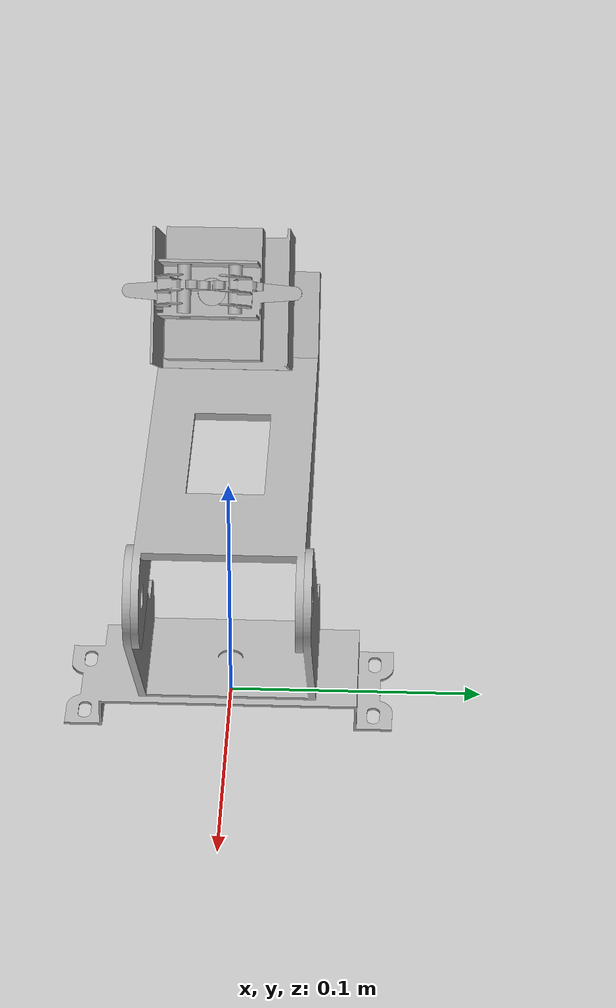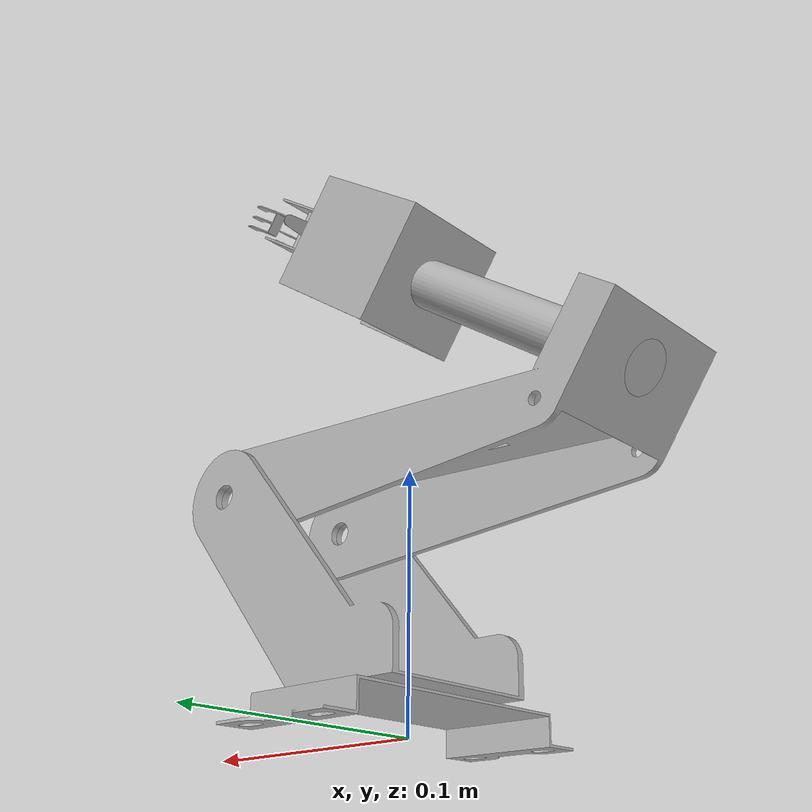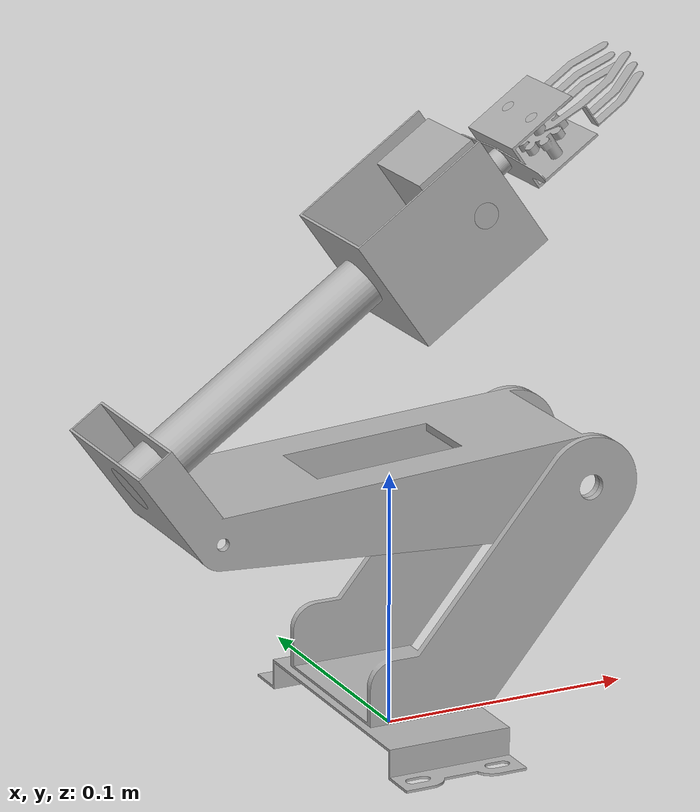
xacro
<?xml version="1.0" ?>
<robot name="7dof" xmlns:xacro="http://www.ros.org/wiki/xacro">

<xacro:include filename="$(find 7dof_description)/urdf/materials.xacro" />
<xacro:include filename="$(find 7dof_description)/urdf/7dof.trans" />
<xacro:include filename="$(find 7dof_description)/urdf/7dof.gazebo" />
<link name="base_link">
  <inertial>
    <origin xyz="-1.9615822388533525e-17 8.827120074840085e-17 0.009002899250958178" rpy="0 0 0"/>
    <mass value="0.01956038700343977"/>
    <inertia ixx="2.9e-05" iyy="4e-06" izz="3.3e-05" ixy="0.0" iyz="0.0" ixz="-0.0"/>
  </inertial>
  <visual>
    <origin xyz="0 0 0" rpy="0 0 0"/>
    <geometry>
      <mesh filename="file://$(find 7dof_description)/meshes/base_link.stl" scale="0.001 0.001 0.001"/>
    </geometry>
    <material name="silver"/>
  </visual>
  <collision>
    <origin xyz="0 0 0" rpy="0 0 0"/>
    <geometry>
      <mesh filename="file://$(find 7dof_description)/meshes/base_link.stl" scale="0.001 0.001 0.001"/>
    </geometry>
  </collision>
</link>

<link name="arm_1_1">
  <inertial>
    <origin xyz="0.02971251800470596 5.924914869048442e-17 0.0414323495110301" rpy="0 0 0"/>
    <mass value="0.09066295805207186"/>
    <inertia ixx="0.00017" iyy="0.000152" izz="0.000164" ixy="0.0" iyz="0.0" ixz="-6.4e-05"/>
  </inertial>
  <visual>
    <origin xyz="-0.0 -0.0 -0.012" rpy="0 0 0"/>
    <geometry>
      <mesh filename="file://$(find 7dof_description)/meshes/arm_1_1.stl" scale="0.001 0.001 0.001"/>
    </geometry>
    <material name="silver"/>
  </visual>
  <collision>
    <origin xyz="-0.0 -0.0 -0.012" rpy="0 0 0"/>
    <geometry>
      <mesh filename="file://$(find 7dof_description)/meshes/arm_1_1.stl" scale="0.001 0.001 0.001"/>
    </geometry>
  </collision>
</link>

<link name="arm_3_1">
  <inertial>
    <origin xyz="0.05959283088497133 4.347405463805868e-05 0.04172707292226541" rpy="0 0 0"/>
    <mass value="0.12086262440631358"/>
    <inertia ixx="9.5e-05" iyy="0.000241" izz="0.000173" ixy="-0.0" iyz="-0.0" ixz="-0.000107"/>
  </inertial>
  <visual>
    <origin xyz="0.105545 -0.000112 -0.110506" rpy="0 0 0"/>
    <geometry>
      <mesh filename="file://$(find 7dof_description)/meshes/arm_3_1.stl" scale="0.001 0.001 0.001"/>
    </geometry>
    <material name="silver"/>
  </visual>
  <collision>
    <origin xyz="0.105545 -0.000112 -0.110506" rpy="0 0 0"/>
    <geometry>
      <mesh filename="file://$(find 7dof_description)/meshes/arm_3_1.stl" scale="0.001 0.001 0.001"/>
    </geometry>
  </collision>
</link>

<link name="arm_4_1">
  <inertial>
    <origin xyz="-0.00031065124913117956 0.02232540295040704 0.0009929441828203378" rpy="0 0 0"/>
    <mass value="0.04754958307980198"/>
    <inertia ixx="1.2e-05" iyy="1.2e-05" izz="1e-05" ixy="0.0" iyz="-0.0" ixz="3e-06"/>
  </inertial>
  <visual>
    <origin xyz="-0.027218 0.024888 -0.203467" rpy="0 0 0"/>
    <geometry>
      <mesh filename="file://$(find 7dof_description)/meshes/arm_4_1.stl" scale="0.001 0.001 0.001"/>
    </geometry>
    <material name="silver"/>
  </visual>
  <collision>
    <origin xyz="-0.027218 0.024888 -0.203467" rpy="0 0 0"/>
    <geometry>
      <mesh filename="file://$(find 7dof_description)/meshes/arm_4_1.stl" scale="0.001 0.001 0.001"/>
    </geometry>
  </collision>
</link>

<link name="arm_5_1">
  <inertial>
    <origin xyz="0.00956723756236743 4.879877418544239e-07 0.006536735298877272" rpy="0 0 0"/>
    <mass value="0.007583002778034214"/>
    <inertia ixx="2e-06" iyy="1e-06" izz="2e-06" ixy="0.0" iyz="-0.0" ixz="-0.0"/>
  </inertial>
  <visual>
    <origin xyz="-0.045485 0.002388 -0.217479" rpy="0 0 0"/>
    <geometry>
      <mesh filename="file://$(find 7dof_description)/meshes/arm_5_1.stl" scale="0.001 0.001 0.001"/>
    </geometry>
    <material name="silver"/>
  </visual>
  <collision>
    <origin xyz="-0.045485 0.002388 -0.217479" rpy="0 0 0"/>
    <geometry>
      <mesh filename="file://$(find 7dof_description)/meshes/arm_5_1.stl" scale="0.001 0.001 0.001"/>
    </geometry>
  </collision>
</link>

<link name="arm_7_1">
  <inertial>
    <origin xyz="0.010202770809547769 -0.0009394516584164212 -0.004493000835550015" rpy="0 0 0"/>
    <mass value="0.003466288836036091"/>
    <inertia ixx="0.0" iyy="1e-06" izz="0.0" ixy="0.0" iyz="0.0" ixz="-0.0"/>
  </inertial>
  <visual>
    <origin xyz="-0.052446 0.011538 -0.234561" rpy="0 0 0"/>
    <geometry>
      <mesh filename="file://$(find 7dof_description)/meshes/arm_7_1.stl" scale="0.001 0.001 0.001"/>
    </geometry>
    <material name="silver"/>
  </visual>
  <collision>
    <origin xyz="-0.052446 0.011538 -0.234561" rpy="0 0 0"/>
    <geometry>
      <mesh filename="file://$(find 7dof_description)/meshes/arm_7_1.stl" scale="0.001 0.001 0.001"/>
    </geometry>
  </collision>
</link>

<link name="arm_6_1">
  <inertial>
    <origin xyz="0.010207004599050724 0.0005801178482570417 -0.00449297171362914" rpy="0 0 0"/>
    <mass value="0.00346329575383349"/>
    <inertia ixx="0.0" iyy="1e-06" izz="0.0" ixy="-0.0" iyz="-0.0" ixz="-0.0"/>
  </inertial>
  <visual>
    <origin xyz="-0.052446 -0.006762 -0.234561" rpy="0 0 0"/>
    <geometry>
      <mesh filename="file://$(find 7dof_description)/meshes/arm_6_1.stl" scale="0.001 0.001 0.001"/>
    </geometry>
    <material name="silver"/>
  </visual>
  <collision>
    <origin xyz="-0.052446 -0.006762 -0.234561" rpy="0 0 0"/>
    <geometry>
      <mesh filename="file://$(find 7dof_description)/meshes/arm_6_1.stl" scale="0.001 0.001 0.001"/>
    </geometry>
  </collision>
</link>

<link name="arm_2_1">
  <inertial>
    <origin xyz="-0.0766672536979728 -0.031996855183144685 0.006477186695577314" rpy="0 0 0"/>
    <mass value="0.1523954313332151"/>
    <inertia ixx="0.000119" iyy="0.00047" izz="0.000555" ixy="0.0" iyz="-0.0" ixz="1.5e-05"/>
  </inertial>
  <visual>
    <origin xyz="-0.067151 -0.032 -0.095527" rpy="0 0 0"/>
    <geometry>
      <mesh filename="file://$(find 7dof_description)/meshes/arm_2_1.stl" scale="0.001 0.001 0.001"/>
    </geometry>
    <material name="silver"/>
  </visual>
  <collision>
    <origin xyz="-0.067151 -0.032 -0.095527" rpy="0 0 0"/>
    <geometry>
      <mesh filename="file://$(find 7dof_description)/meshes/arm_2_1.stl" scale="0.001 0.001 0.001"/>
    </geometry>
  </collision>
</link>

<joint name="Revolute 9" type="continuous">
  <origin xyz="0.0 0.0 0.012" rpy="0 0 0"/>
  <parent link="base_link"/>
  <child link="arm_1_1"/>
  <axis xyz="0.0 0.0 1.0"/>
</joint>

<joint name="Revolute 12" type="revolute">
  <origin xyz="-0.172696 -0.031888 0.014979" rpy="0 0 0"/>
  <parent link="arm_2_1"/>
  <child link="arm_3_1"/>
  <axis xyz="0.819152 0.0 0.573576"/>
  <limit upper="3.141593" lower="0.0" effort="100" velocity="100"/>
</joint>

<joint name="Revolute 13" type="revolute">
  <origin xyz="0.132763 -0.025 0.092961" rpy="0 0 0"/>
  <parent link="arm_3_1"/>
  <child link="arm_4_1"/>
  <axis xyz="0.0 1.0 0.0"/>
  <limit upper="1.570796" lower="-1.570796" effort="100" velocity="100"/>
</joint>

<joint name="Revolute 14" type="revolute">
  <origin xyz="0.018267 0.0225 0.014012" rpy="0 0 0"/>
  <parent link="arm_4_1"/>
  <child link="arm_5_1"/>
  <axis xyz="0.819152 0.0 0.573576"/>
  <limit upper="1.570796" lower="-1.570796" effort="100" velocity="100"/>
</joint>

<joint name="Revolute 15" type="revolute">
  <origin xyz="0.006961 -0.00915 0.017082" rpy="0 0 0"/>
  <parent link="arm_5_1"/>
  <child link="arm_7_1"/>
  <axis xyz="0.573576 0.0 -0.819152"/>
  <limit upper="1.570796" lower="-0.261799" effort="100" velocity="100"/>
</joint>

<joint name="Revolute 16" type="revolute">
  <origin xyz="0.006961 0.00915 0.017082" rpy="0 0 0"/>
  <parent link="arm_5_1"/>
  <child link="arm_6_1"/>
  <axis xyz="0.573576 0.0 -0.819152"/>
  <limit upper="0.261799" lower="-1.570796" effort="100" velocity="100"/>
</joint>

<joint name="Revolute 17" type="revolute">
  <origin xyz="0.067151 0.032 0.083527" rpy="0 0 0"/>
  <parent link="arm_1_1"/>
  <child link="arm_2_1"/>
  <axis xyz="0.0 1.0 0.0"/>
  <limit upper="1.570796" lower="0.0" effort="100" velocity="100"/>
</joint>

</robot>

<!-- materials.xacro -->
<robot name="7dof" xmlns:xacro="http://www.ros.org/wiki/xacro" >

<material name="silver">
  <color rgba="0.700 0.700 0.700 1.000"/>
</material>

</robot>

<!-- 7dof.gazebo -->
<robot name="7dof" xmlns:xacro="http://www.ros.org/wiki/xacro" >

<xacro:property name="body_color" value="Gazebo/Silver" />

<gazebo>
  <plugin name="control" filename="libgazebo_ros_control.so"/>
</gazebo>
<gazebo reference="base_link">
  <material>${body_color}</material>
  <mu1>0.2</mu1>
  <mu2>0.2</mu2>
  <self_collide>true</self_collide>
  <gravity>true</gravity>
</gazebo>

<gazebo reference="arm_1_1">
  <material>${body_color}</material>
  <mu1>0.2</mu1>
  <mu2>0.2</mu2>
  <self_collide>true</self_collide>
</gazebo>

<gazebo reference="arm_3_1">
  <material>${body_color}</material>
  <mu1>0.2</mu1>
  <mu2>0.2</mu2>
  <self_collide>true</self_collide>
</gazebo>

<gazebo reference="arm_4_1">
  <material>${body_color}</material>
  <mu1>0.2</mu1>
  <mu2>0.2</mu2>
  <self_collide>true</self_collide>
</gazebo>

<gazebo reference="arm_5_1">
  <material>${body_color}</material>
  <mu1>0.2</mu1>
  <mu2>0.2</mu2>
  <self_collide>true</self_collide>
</gazebo>

<gazebo reference="arm_7_1">
  <material>${body_color}</material>
  <mu1>0.2</mu1>
  <mu2>0.2</mu2>
  <self_collide>true</self_collide>
</gazebo>

<gazebo reference="arm_6_1">
  <material>${body_color}</material>
  <mu1>0.2</mu1>
  <mu2>0.2</mu2>
  <self_collide>true</self_collide>
</gazebo>

<gazebo reference="arm_2_1">
  <material>${body_color}</material>
  <mu1>0.2</mu1>
  <mu2>0.2</mu2>
  <self_collide>true</self_collide>
</gazebo>

</robot>
